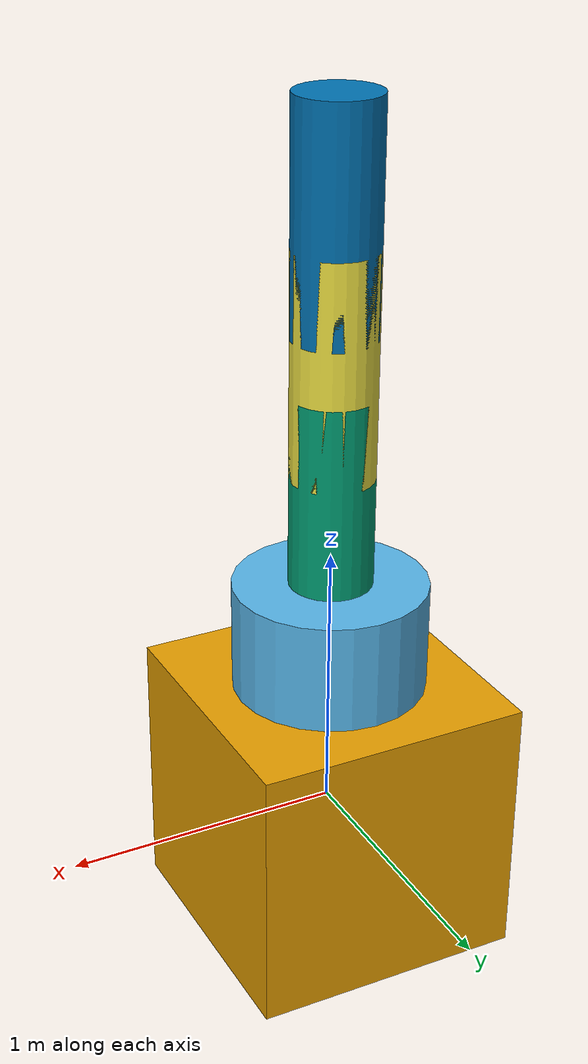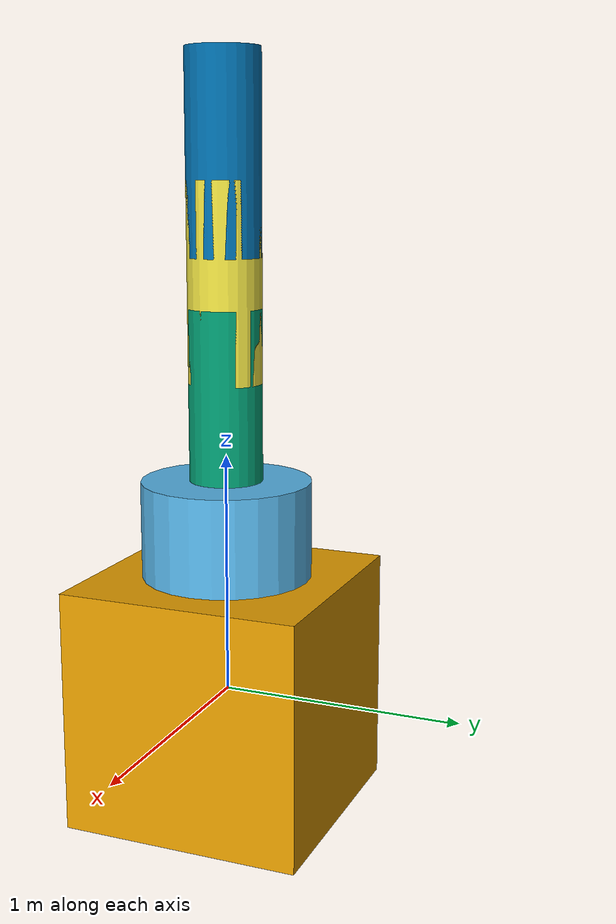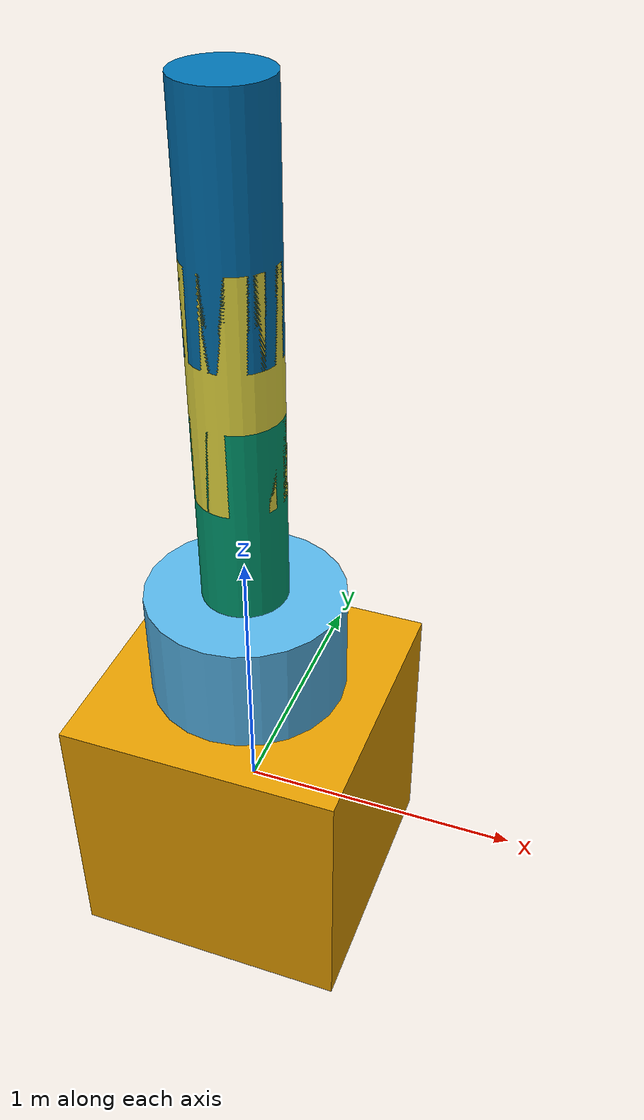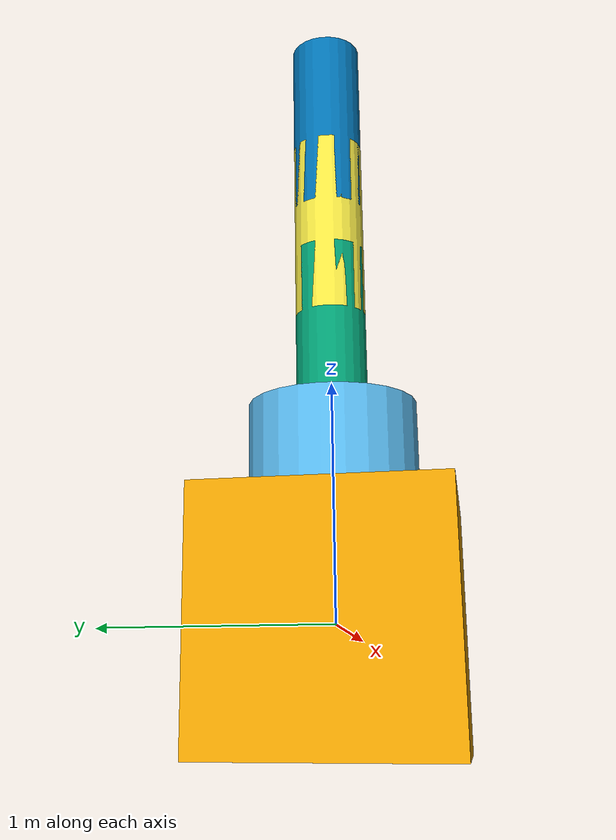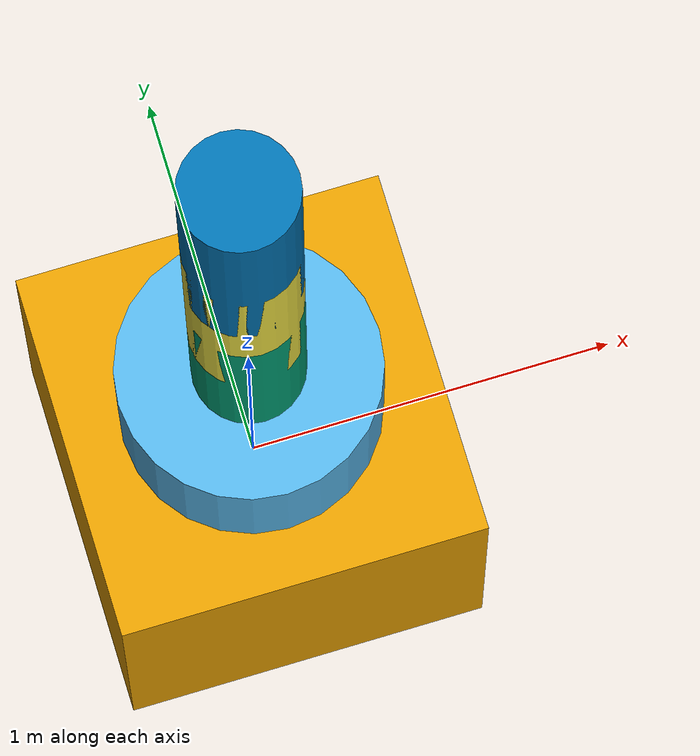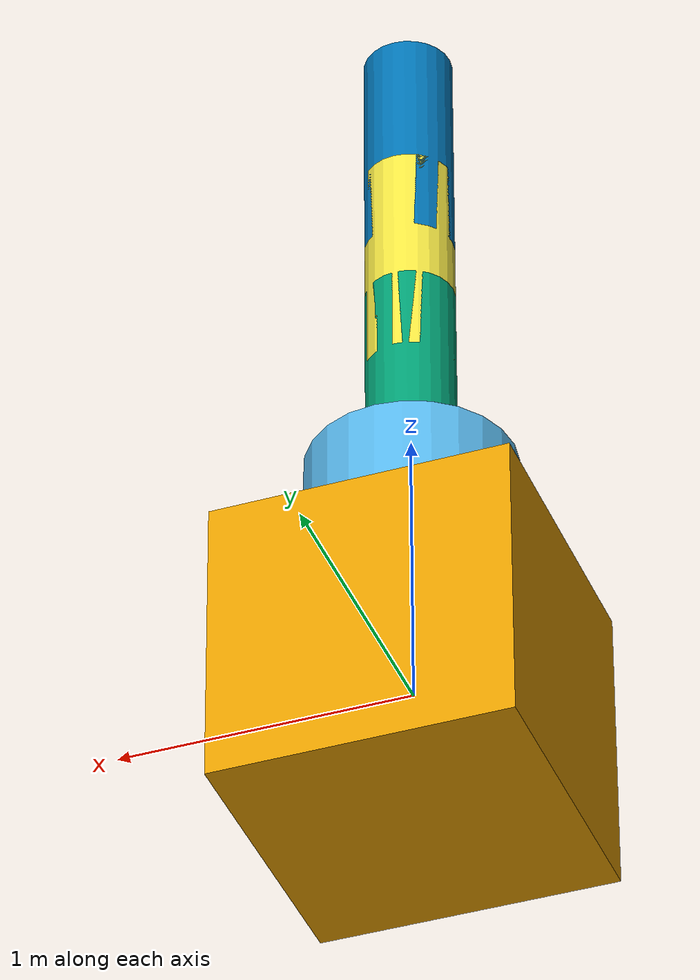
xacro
<?xml version="1.0" ?>

<robot name="mrm" xmlns:xacro="http://www.ros.org/wiki/xacro">
    <link name="base_link">
        <visual>
            <origin rpy="0 0 0" xyz="0 0 0"/>
            <geometry>
                <box size="1 1 1"/>
            </geometry>
        </visual>
    </link>

    <joint name="base_link__link_01" type="revolute">
        <axis xyz="0 0 1" />
        <limit effort="1000.0" lower="-3.14" upper="3.14" velocity="0.5" />
        <origin rpy="0 0 0" xyz="0 0 0.5"/>
        <parent link="base_link"/>
        <child link="link1"/>
    </joint>

    <link name="link1">
        <visual>
            <origin rpy="0 0 0" xyz="0 0 0.2"/>
            <geometry>
                <cylinder radius="0.35" length="0.4"/>
            </geometry>
        </visual>
    </link>

    <joint name="link1__link_02" type="revolute">
        <axis xyz="0 0 1" />
        <limit effort="1000.0" lower="-3.14" upper="3.14" velocity="0.5" />
        <origin rpy="0 0 0" xyz="0 0 0.5"/>
        <parent link="link1"/>
        <child link="link2"/>
    </joint>

    <link name="link2">
        <visual>
            <origin rpy="0 0 0" xyz="0 0 0.2"/>
            <geometry>
                <cylinder radius="0.15" length="0.8"/>
            </geometry>
        </visual>
    </link>

    <joint name="link2__link_03" type="revolute">
        <axis xyz="0 0 1" />
        <limit effort="1000.0" lower="-3.14" upper="3.14" velocity="0.5" />
        <origin rpy="0 0 0" xyz="0 0 0.5"/>
        <parent link="link2"/>
        <child link="link3"/>
    </joint>

    <link name="link3">
        <visual>
            <origin rpy="0 0 0" xyz="0 0 0.2"/>
            <geometry>
                <cylinder radius="0.15" length="0.8"/>
            </geometry>
        </visual>
    </link>

    <joint name="link3__link_04" type="revolute">
        <axis xyz="0 0 1" />
        <limit effort="1000.0" lower="-3.14" upper="3.14" velocity="0.5" />
        <origin rpy="0 0 0" xyz="0 0 0.5"/>
        <parent link="link3"/>
        <child link="link4"/>
    </joint>

    <link name="link4">
        <visual>
            <origin rpy="0 0 0" xyz="0 0 0.2"/>
            <geometry>
                <cylinder radius="0.15" length="0.8"/>
            </geometry>
        </visual>
    </link>

</robot>
